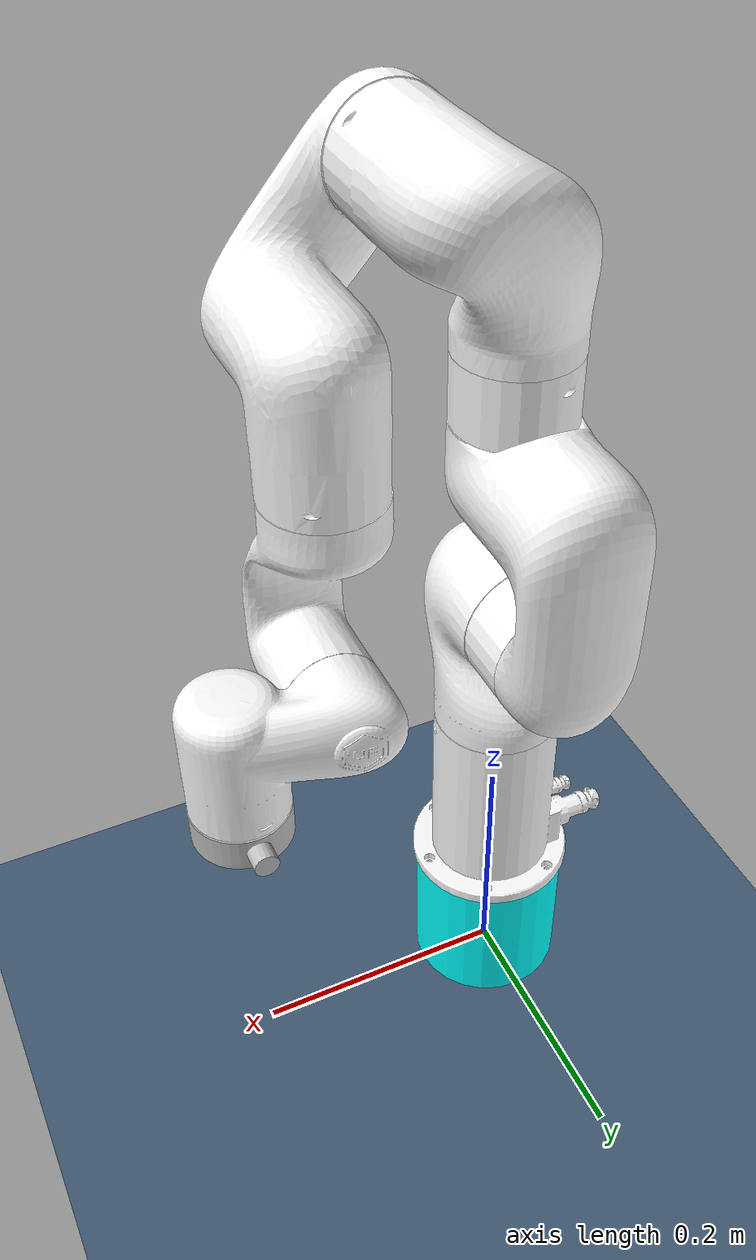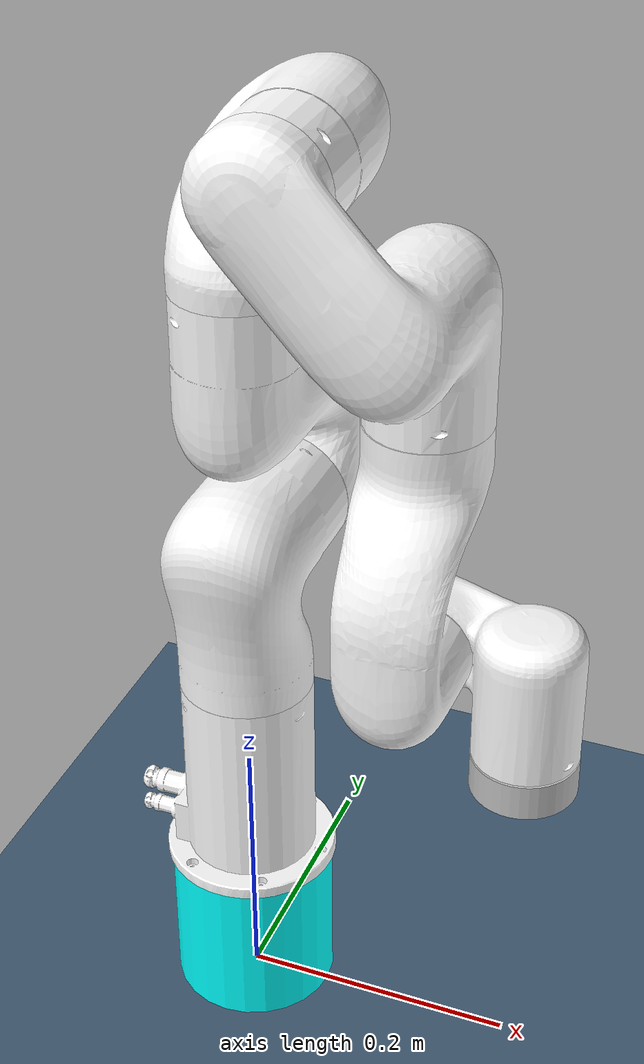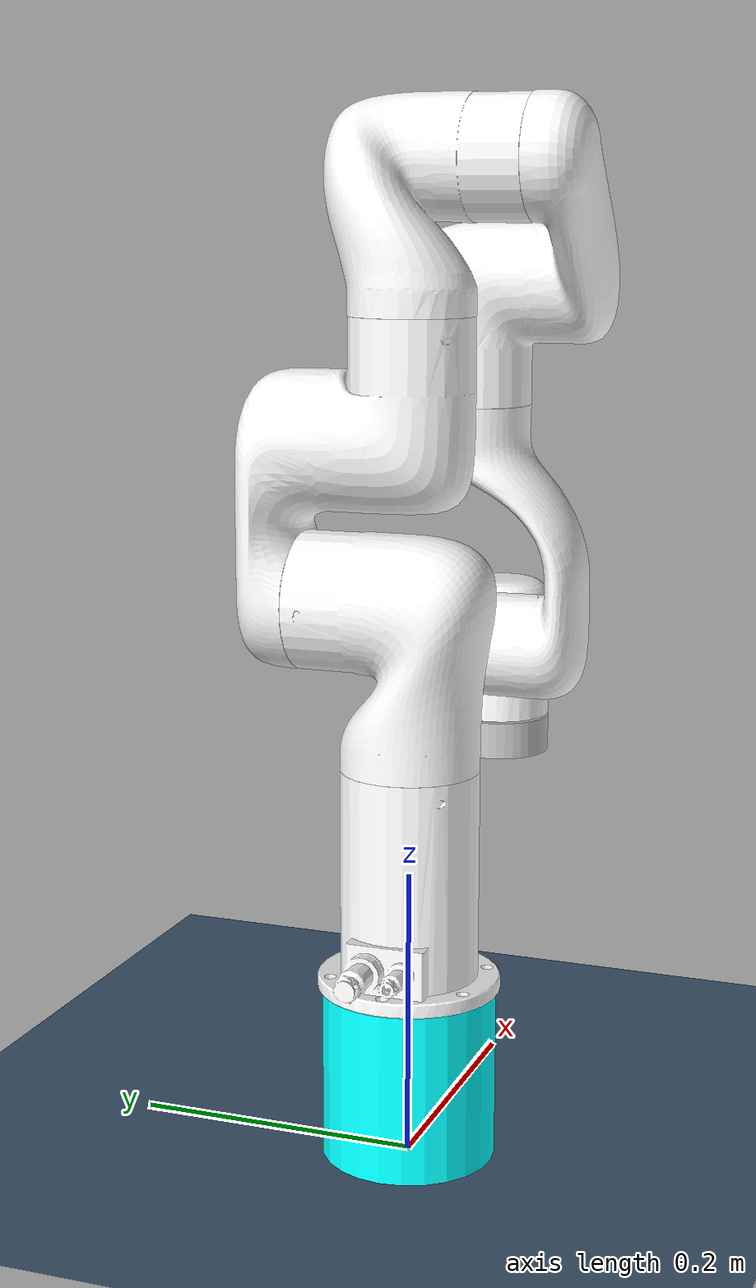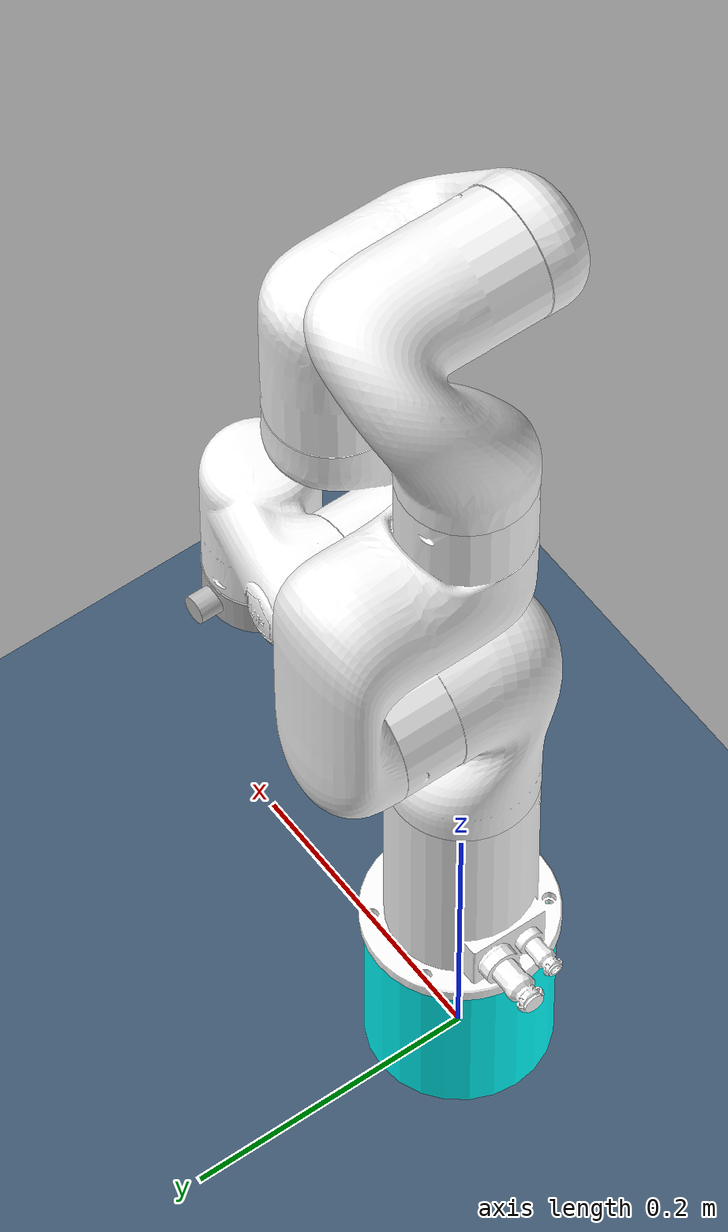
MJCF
<mujoco model="xarm7 scene">
  <include file="xarm7_nohand.xml"/>

  <statistic center="0.2 0 0.4" extent=".65"/>

  <asset>
    <texture type="skybox" builtin="gradient" rgb1="0.3 0.5 0.7" rgb2="0 0 0" width="512" height="3072"/>
    <texture type="2d" name="groundplane" builtin="checker" rgb1="0.2 0.3 0.4" rgb2="0.3 0.4 0.5"
      markrgb="0.8 0.8 0.8" width="300" height="300"/>
    <material name="groundplane" texture="groundplane" texuniform="true" texrepeat="5 5" reflectance="0.0"/>
  </asset>

  <worldbody>
    <light pos="0 0 1.5" dir="0 0 -1" directional="true"/>
    <geom name="floor" size="0 0 0.05" type="plane" material="groundplane"/>
    <geom type="cylinder" size=".06 .06" pos="0 0 .06" rgba="0 1 1 1"/>
  </worldbody>

</mujoco>

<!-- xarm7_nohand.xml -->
<mujoco model="xarm7 nohand">
  <compiler angle="radian" autolimits="true" meshdir="assets" />

  <option integrator="implicitfast" />

  <option gravity="0 0 -9.81" />

  <asset>
    <material name="white" rgba="1 1 1 1" />
    <material name="gray" rgba="0.753 0.753 0.753 1" />

    <mesh file="link_base.stl" />
    <mesh file="link1.stl" />
    <mesh file="link2.stl" />
    <mesh file="link3.stl" />
    <mesh file="link4.stl" />
    <mesh file="link5.stl" />
    <mesh file="link6.stl" />
    <mesh file="link7.stl" />
    <mesh file="end_tool.stl" />
  </asset>

  <default>
    <default class="xarm7">
      <geom type="mesh" material="white" />
      <joint axis="0 0 1" armature="0.1" range="-6.28319 6.28319" frictionloss="1" />
      <general biastype="affine" ctrlrange="-6.28319 6.28319" />
      <default class="size1">
        <joint damping="10" />
        <general gainprm="1500" biasprm="0 -1500 -150" forcerange="-50 50" />
      </default>
      <default class="size2">
        <joint damping="5" />
        <general gainprm="1000" biasprm="0 -1000 -100" forcerange="-30 30" />
      </default>
      <default class="size3">
        <joint damping="2" />
        <general gainprm="800" biasprm="0 -800 -80" forcerange="-20 20" />
      </default>
      <site size="0.001" rgba="1 0 0 1" group="4" />
    </default>
  </default>

  <worldbody>
    <body name="link_base" pos="0 0 .12" childclass="xarm7">
      <inertial pos="-0.021131 -0.0016302 0.056488" quat="0.6968 0.2018 0.1039 0.6804" mass="0.88556" diaginertia="0.00382 0.00335 0.00168" />
      <geom mesh="link_base" />
      <body name="link1" pos="0 0 0.267">
        <inertial pos="0.00013 0.0294 -0.0124" quat="0.979 -0.2028 -0.0044 -0.0227" mass="2.382" diaginertia="0.00569 0.00533 0.00294" />
        <joint name="joint1" class="size1" />
        <geom mesh="link1" />
        <body name="link2" quat="1 -1 0 0">
          <inertial pos="0.0002 -0.12856 0.01735" quat="0.502 0.8648 -0.0078 0.0048" mass="1.869" diaginertia="0.0096 0.00938 0.00201" />
          <joint name="joint2" range="-2.059 2.0944" class="size1" />
          <geom mesh="link2" />
          <body name="link3" pos="0 -0.293 0" quat="1 1 0 0">
            <inertial pos="0.0466 -0.02463 -0.00768" quat="0.9138 0.2898 0.2815 -0.0416" mass="1.638" diaginertia="0.00352 0.00294 0.00196" />
            <joint name="joint3" class="size2" />
            <geom mesh="link3" />
            <body name="link4" pos="0.0525 0 0" quat="1 1 0 0">
              <inertial pos="0.0705 -0.11575 0.0120" quat="0.4221 0.852 -0.126 0.2828" mass="1.7269" diaginertia="0.00657 0.00648 0.00187" />
              <joint name="joint4" range="-0.19198 3.927" class="size2" />
              <geom mesh="link4" />
              <body name="link5" pos="0.0775 -0.3425 0" quat="1 1 0 0">
                <inertial pos="-0.00032 0.01604 -0.0260" quat="0.9993 -0.0304 0.0006 0.0212" mass="1.3203" diaginertia="0.00535 0.00499 0.00135" />
                <joint name="joint5" class="size2" />
                <geom mesh="link5" />
                <body name="link6" quat="1 1 0 0">
                  <inertial pos="0.0647 0.0328 0.0214" quat="-0.2177 0.7724 0.1626 0.5741" mass="1.325" diaginertia="0.00245 0.00222 0.00107" />
                  <joint name="joint6" range="-1.69297 3.14159" class="size3" />
                  <geom mesh="link6" />
                  <body name="link7" pos="0.076 0.097 0" quat="1 -1 0 0">
                    <inertial pos="0.0 -0.00677 -0.01098" quat="0.4876 0.5121 -0.5121 0.4876" mass="0.17" diaginertia="0.000132 0.000093 0.000058" />
                    <joint name="joint7" class="size3" />
                    <geom material="gray" mesh="end_tool" />
                    <site name="attachment_site" />
                  </body>
                </body>
              </body>
            </body>
          </body>
        </body>
      </body>
    </body>
  </worldbody>

  <actuator>
    <general name="act1" joint="joint1" class="size1" />
    <general name="act2" joint="joint2" class="size1" ctrlrange="-2.059 2.0944" />
    <general name="act3" joint="joint3" class="size2" />
    <general name="act4" joint="joint4" class="size2" ctrlrange="-0.19198 3.927" />
    <general name="act5" joint="joint5" class="size2" />
    <general name="act6" joint="joint6" class="size3" ctrlrange="-1.69297 3.14159" />
    <general name="act7" joint="joint7" class="size3" />
  </actuator>

  <keyframe>
    <key name="home" qpos="0 -.247 0 .909 0 1.15644 0" ctrl="0 -.247 0 .909 0 1.15644 0" />
  </keyframe>

</mujoco>
